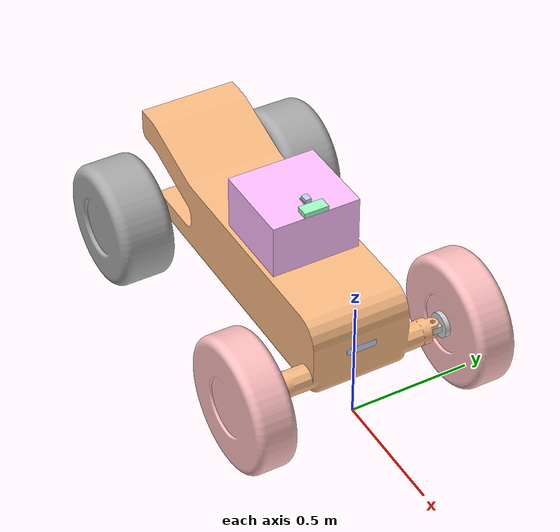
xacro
<?xml version="1.0" encoding="utf-8"?>
<robot name="puma_model" xmlns:xacro="http://ros.org/wiki/xacro">
  <xacro:include filename="$(find puma_model)/urdf/puma_model.gazebo.xacro"/>
  <link
    name="base_link">
    <inertial>
      <origin
        xyz="-0.559904066756664 2.52439420520001E-07 0.369470453921975"
        rpy="0 0 0" />
      <mass
        value="154.381267641272" />
      <inertia
        ixx="3.8643546710344"
        ixy="-9.50231640664163E-07"
        ixz="1.15363830622366"
        iyy="22.232099682778"
        iyz="9.01311880646326E-06"
        izz="22.6507305397505" />
    </inertial>
    <visual>
      <origin
        xyz="0 0 0"
        rpy="0 0 0" />
      <geometry>
        <mesh
          filename="package://puma_model/meshes/v2/base_link.STL" />
      </geometry>
      <material
        name="">
        <color
          rgba="0.988235294117647 0.737254901960784 0.517647058823529 1" />
      </material>
    </visual>
    <collision>
      <origin
        xyz="0 0 0"
        rpy="0 0 0" />
      <geometry>
        <mesh
          filename="package://puma_model/meshes/v2/base_link.STL" />
      </geometry>
    </collision>
  </link>
  <link
    name="dir_right_link">
    <inertial>
      <origin
        xyz="-2.22044604925031E-16 -0.0294777193153578 1.11022302462516E-16"
        rpy="0 0 0" />
      <mass
        value="0.214607285846125" />
      <inertia
        ixx="0.000161787233745492"
        ixy="-1.24830140229751E-20"
        ixz="-1.78299811249943E-21"
        iyy="0.000212842937751498"
        iyz="1.23372093603248E-20"
        izz="0.000169651482672632" />
    </inertial>
    <visual>
      <origin
        xyz="0 0 0"
        rpy="0 0 0" />
      <geometry>
        <mesh
          filename="package://puma_model/meshes/v2/dir_right_link.STL" />
      </geometry>
      <material
        name="">
        <color
          rgba="0.823529411764706 0.823529411764706 0.823529411764706 1" />
      </material>
    </visual>
    <collision>
      <origin
        xyz="0 0 0"
        rpy="0 0 0" />
      <geometry>
        <mesh
          filename="package://puma_model/meshes/v2/dir_right_link.STL" />
      </geometry>
    </collision>
  </link>
  <joint
    name="dir_right_joint"
    type="continuous">
    <origin
      xyz="0 -0.337 0.265"
      rpy="0 0 0" />
    <parent
      link="base_link" />
    <child
      link="dir_right_link" />
    <axis
      xyz="0 0 1" />
  </joint>
  <link
    name="wheel_right_front_link">
    <inertial>
      <origin
        xyz="0 1.11022302462516E-16 0.07"
        rpy="0 0 0" />
      <mass
        value="33.8332405777372" />
      <inertia
        ixx="0.663166940004142"
        ixy="1.74598601904134E-32"
        ixz="4.51486827425246E-17"
        iyy="0.663166940004142"
        iyz="1.07735398960113E-17"
        izz="1.19194782788173" />
    </inertial>
    <visual>
      <origin
        xyz="0 0 0"
        rpy="0 0 0" />
      <geometry>
        <mesh
          filename="package://puma_model/meshes/v2/wheel_right_front_link.STL" />
      </geometry>
      <material
        name="">
        <color
          rgba="1 0.752941176470588 0.752941176470588 1" />
      </material>
    </visual>
    <collision>
      <origin
        xyz="0 0 0"
        rpy="0 0 0" />
      <geometry>
        <mesh
          filename="package://puma_model/meshes/v2/wheel_right_front_link.STL" />
      </geometry>
    </collision>
  </link>
  <joint
    name="wheel_right_front_joint"
    type="continuous">
    <origin
      xyz="0 -0.0480000000000001 0"
      rpy="1.5707963267949 0 0" />
    <parent
      link="dir_right_link" />
    <child
      link="wheel_right_front_link" />
    <axis
      xyz="0 0 -1" />
    <dynamics
      friction="1" />
  </joint>
  <link
    name="dir_left_link">
    <inertial>
      <origin
        xyz="0 0.0294777193153578 1.11022302462516E-16"
        rpy="0 0 0" />
      <mass
        value="0.214607285846125" />
      <inertia
        ixx="0.000161787233745492"
        ixy="1.23353249005569E-21"
        ixz="-2.86590106719918E-21"
        iyy="0.000212842937751498"
        iyz="2.66850804551272E-20"
        izz="0.000169651482672632" />
    </inertial>
    <visual>
      <origin
        xyz="0 0 0"
        rpy="0 0 0" />
      <geometry>
        <mesh
          filename="package://puma_model/meshes/v2/dir_left_link.STL" />
      </geometry>
      <material
        name="">
        <color
          rgba="0.823529411764706 0.823529411764706 0.823529411764706 1" />
      </material>
    </visual>
    <collision>
      <origin
        xyz="0 0 0"
        rpy="0 0 0" />
      <geometry>
        <mesh
          filename="package://puma_model/meshes/v2/dir_left_link.STL" />
      </geometry>
    </collision>
  </link>
  <joint
    name="dir_left_joint"
    type="continuous">
    <origin
      xyz="0 0.337 0.265"
      rpy="0 0 0" />
    <parent
      link="base_link" />
    <child
      link="dir_left_link" />
    <axis
      xyz="0 0 1" />
  </joint>
  <link
    name="wheel_left_front_link">
    <inertial>
      <origin
        xyz="0 0 0.0699999999999999"
        rpy="0 0 0" />
      <mass
        value="33.8332405777372" />
      <inertia
        ixx="0.663166940004142"
        ixy="3.62902943280336E-32"
        ixz="-3.47625364951278E-17"
        iyy="0.663166940004142"
        iyz="1.01566182105979E-18"
        izz="1.19194782788173" />
    </inertial>
    <visual>
      <origin
        xyz="0 0 0"
        rpy="0 0 0" />
      <geometry>
        <mesh
          filename="package://puma_model/meshes/v2/wheel_left_front_link.STL" />
      </geometry>
      <material
        name="">
        <color
          rgba="1 0.752941176470588 0.752941176470588 1" />
      </material>
    </visual>
    <collision>
      <origin
        xyz="0 0 0"
        rpy="0 0 0" />
      <geometry>
        <mesh
          filename="package://puma_model/meshes/v2/wheel_left_front_link.STL" />
      </geometry>
    </collision>
  </link>
  <joint
    name="wheel_left_front_joint"
    type="continuous">
    <origin
      xyz="0 0.048 0"
      rpy="1.5707963267949 0 -3.14159265358979" />
    <parent
      link="dir_left_link" />
    <child
      link="wheel_left_front_link" />
    <axis
      xyz="0 0 -1" />
    <dynamics
      friction="1" />
  </joint>
  <link
    name="wheel_right_back_link">
    <inertial>
      <origin
        xyz="0 -1.11022302462516E-16 0.1"
        rpy="0 0 0" />
      <mass
        value="42.8421975932662" />
      <inertia
        ixx="0.843504879614984"
        ixy="-2.17897005442215E-32"
        ixz="6.01287397790473E-17"
        iyy="0.843504879614984"
        iyz="-2.51058847467066E-16"
        izz="1.34196583325215" />
    </inertial>
    <visual>
      <origin
        xyz="0 0 0"
        rpy="0 0 0" />
      <geometry>
        <mesh
          filename="package://puma_model/meshes/v2/wheel_right_back_link.STL" />
      </geometry>
      <material
        name="">
        <color
          rgba="0.666666666666667 0.666666666666667 0.666666666666667 1" />
      </material>
    </visual>
    <collision>
      <origin
        xyz="0 0 0"
        rpy="0 0 0" />
      <geometry>
        <mesh
          filename="package://puma_model/meshes/v2/wheel_right_back_link.STL" />
      </geometry>
    </collision>
  </link>
  <joint
    name="wheel_right_back_joint"
    type="continuous">
    <origin
      xyz="-1.15000189278629 -0.275 0.25"
      rpy="1.5707963267949 0 0" />
    <parent
      link="base_link" />
    <child
      link="wheel_right_back_link" />
    <axis
      xyz="0 0 -1" />
    <dynamics
      friction="1" />
  </joint>
  <link
    name="wheel_left_back_link">
    <inertial>
      <origin
        xyz="1.11022302462516E-16 1.11022302462516E-16 0.1"
        rpy="0 0 0" />
      <mass
        value="42.8421975932662" />
      <inertia
        ixx="0.843504879614984"
        ixy="-4.06685460585995E-33"
        ixz="-3.69567293190446E-18"
        iyy="0.843504879614984"
        iyz="1.64612942139347E-17"
        izz="1.34196583325215" />
    </inertial>
    <visual>
      <origin
        xyz="0 0 0"
        rpy="0 0 0" />
      <geometry>
        <mesh
          filename="package://puma_model/meshes/v2/wheel_left_back_link.STL" />
      </geometry>
      <material
        name="">
        <color
          rgba="0.666666666666667 0.666666666666667 0.666666666666667 1" />
      </material>
    </visual>
    <collision>
      <origin
        xyz="0 0 0"
        rpy="0 0 0" />
      <geometry>
        <mesh
          filename="package://puma_model/meshes/v2/wheel_left_back_link.STL" />
      </geometry>
    </collision>
  </link>
  <joint
    name="wheel_left_back_joint"
    type="continuous">
    <origin
      xyz="-1.15000189278629 0.275 0.25"
      rpy="-1.5707963267949 0 0" />
    <parent
      link="base_link" />
    <child
      link="wheel_left_back_link" />
    <axis
      xyz="0 0 -1" />
    <dynamics
      friction="1" />
  </joint>
  <link
    name="base_component_link">
    <inertial>
      <origin
        xyz="-1.38777878078145E-17 -1.38777878078145E-17 0"
        rpy="0 0 0" />
      <mass
        value="26.928" />
      <inertia
        ixx="0.399432"
        ixy="-5.82648744066697E-18"
        ixz="-6.57606322748783E-34"
        iyy="0.368016"
        iyz="1.74696983473478E-33"
        izz="0.5502288" />
    </inertial>
    <visual>
      <origin
        xyz="0 0 0"
        rpy="0 0 0" />
      <geometry>
        <mesh
          filename="package://puma_model/meshes/v2/base_component_link.STL" />
      </geometry>
      <material
        name="">
        <color
          rgba="1 0.752941176470588 1 1" />
      </material>
    </visual>
    <collision>
      <origin
        xyz="0 0 0"
        rpy="0 0 0" />
      <geometry>
        <mesh
          filename="package://puma_model/meshes/v2/base_component_link.STL" />
      </geometry>
    </collision>
  </link>
  <joint
    name="base_component_joint"
    type="fixed">
    <origin
      xyz="-0.450001892786288 0 0.63"
      rpy="0 0 0" />
    <parent
      link="base_link" />
    <child
      link="base_component_link" />
    <axis
      xyz="0 0 0" />
  </joint>
  <link
    name="gps_link">
    <inertial>
      <origin
        xyz="0 -1.38777878078145E-17 -0.01"
        rpy="0 0 0" />
      <mass
        value="0.1" />
      <inertia
        ixx="8.66666666666668E-05"
        ixy="-6.77626357802914E-24"
        ixz="1.44560289664734E-22"
        iyy="2.41666666666667E-05"
        iyz="-2.17743936307504E-22"
        izz="0.000104166666666667" />
    </inertial>
    <visual>
      <origin
        xyz="0 0 0"
        rpy="0 0 0" />
      <geometry>
        <mesh
          filename="package://puma_model/meshes/v2/gps_link.STL" />
      </geometry>
      <material
        name="">
        <color
          rgba="0.623529411764706 1 0.76078431372549 1" />
      </material>
    </visual>
    <collision>
      <origin
        xyz="0 0 0"
        rpy="0 0 0" />
      <geometry>
        <mesh
          filename="package://puma_model/meshes/v2/gps_link.STL" />
      </geometry>
    </collision>
  </link>
  <joint
    name="gps_joint"
    type="fixed">
    <origin
      xyz="-0.305001892786288 0 0.76"
      rpy="0 0 0" />
    <parent
      link="base_link" />
    <child
      link="gps_link" />
    <axis
      xyz="0 0 0" />
  </joint>
  <link
    name="imu_link">
    <inertial>
      <origin
        xyz="5.08055300385557E-07 -0.000195569944066151 -0.0121628383871961"
        rpy="0 0 0" />
      <mass
        value="0.0106550387325199" />
      <inertia
        ixx="1.16705248203446E-06"
        ixy="2.03256158405584E-11"
        ixz="2.11642113815375E-12"
        iyy="2.20541869708662E-06"
        iyz="-8.14691556822213E-10"
        izz="2.78315231388432E-06" />
    </inertial>
    <visual>
      <origin
        xyz="0 0 0"
        rpy="0 0 0" />
      <geometry>
        <mesh
          filename="package://puma_model/meshes/v2/imu_link.STL" />
      </geometry>
      <material
        name="">
        <color
          rgba="0.792156862745098 0.819607843137255 0.933333333333333 1" />
      </material>
    </visual>
    <collision>
      <origin
        xyz="0 0 0"
        rpy="0 0 0" />
      <geometry>
        <mesh
          filename="package://puma_model/meshes/v2/imu_link.STL" />
      </geometry>
    </collision>
  </link>
  <joint
    name="imu_joint"
    type="fixed">
    <origin
      xyz="-0.363001892786288 0.00300000000000007 0.761"
      rpy="0 0 0" />
    <parent
      link="base_link" />
    <child
      link="imu_link" />
    <axis
      xyz="0 0 0" />
  </joint>
  <link
    name="camara_link">
    <inertial>
      <origin
        xyz="-0.00149999999999995 2.77555756156289E-17 -1.11022302462516E-16"
        rpy="0 0 0" />
      <mass
        value="0.0105304777960769" />
      <inertia
        ixx="1.36186520257664E-05"
        ixy="-2.34298407531536E-24"
        ixz="-5.96948675392447E-24"
        iyy="7.24303978619533E-07"
        iyz="8.97261282281197E-22"
        izz="1.2910143763841E-05" />
    </inertial>
    <visual>
      <origin
        xyz="0 0 0"
        rpy="0 0 0" />
      <geometry>
        <mesh
          filename="package://puma_model/meshes/v2/camara_link.STL" />
      </geometry>
      <material
        name="">
        <color
          rgba="0.792156862745098 0.819607843137255 0.933333333333333 1" />
      </material>
    </visual>
    <collision>
      <origin
        xyz="0 0 0"
        rpy="0 0 0" />
      <geometry>
        <mesh
          filename="package://puma_model/meshes/v2/camara_link.STL" />
      </geometry>
    </collision>
  </link>
  <joint
    name="camara_joint"
    type="fixed">
    <origin
      xyz="0.0529981072137121 0 0.36"
      rpy="0 0 0" />
    <parent
      link="base_link" />
    <child
      link="camara_link" />
    <axis
      xyz="0 0 0" />
  </joint>

</robot>
